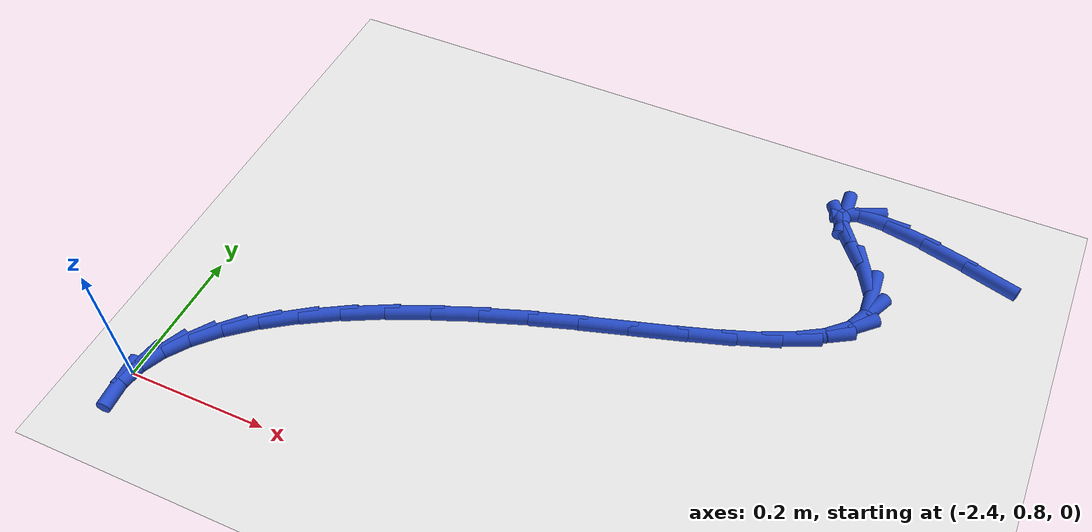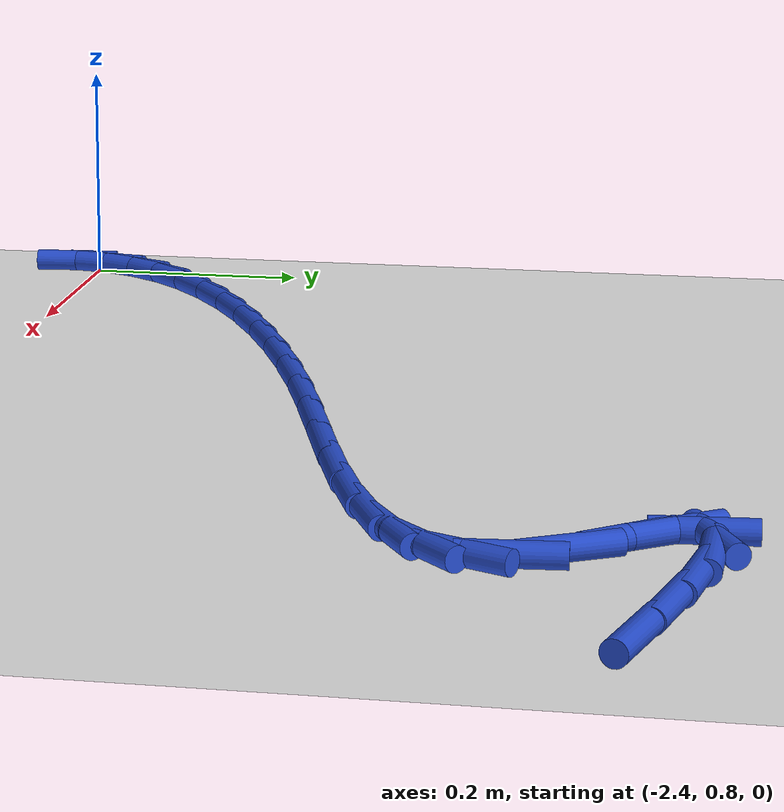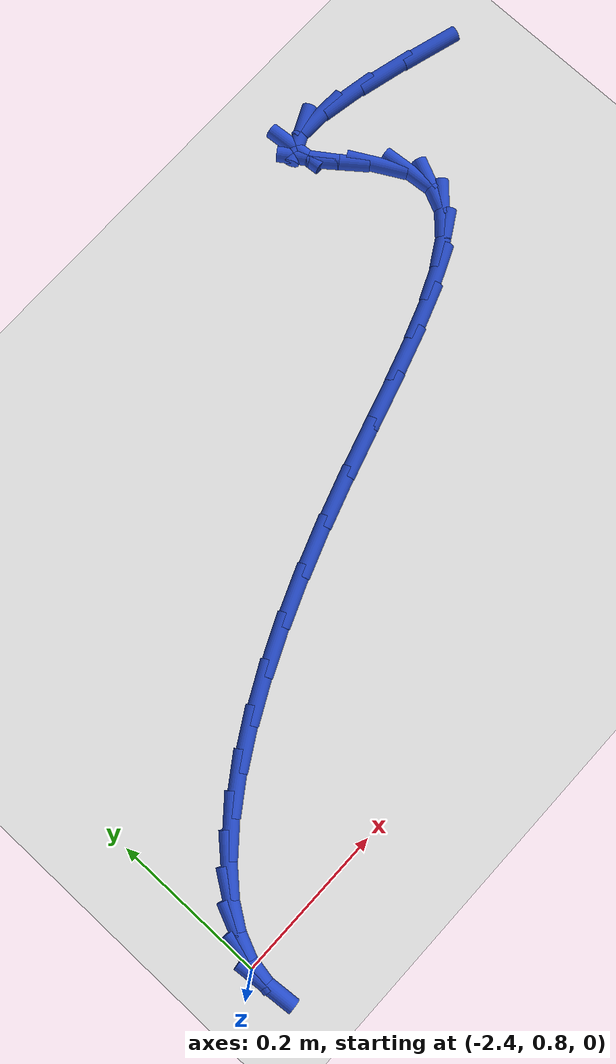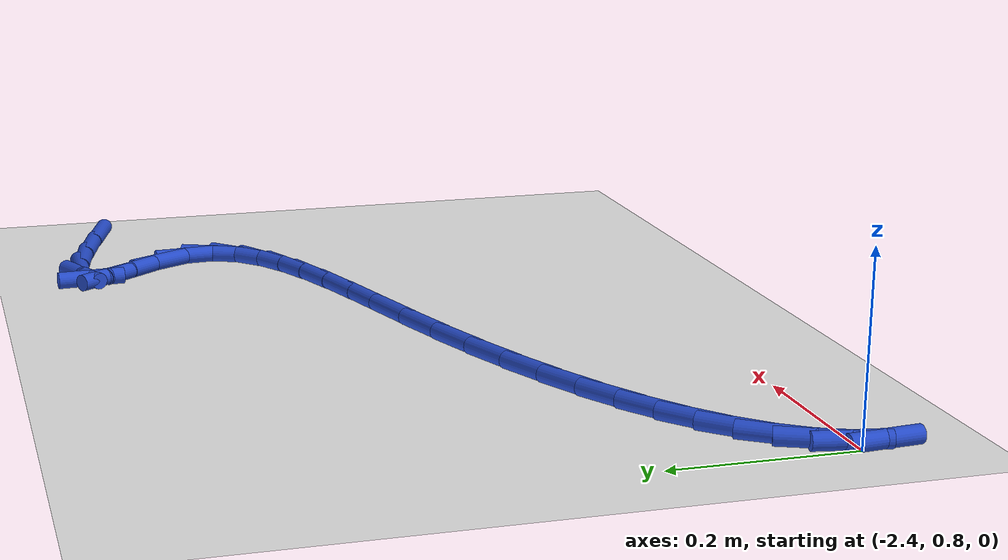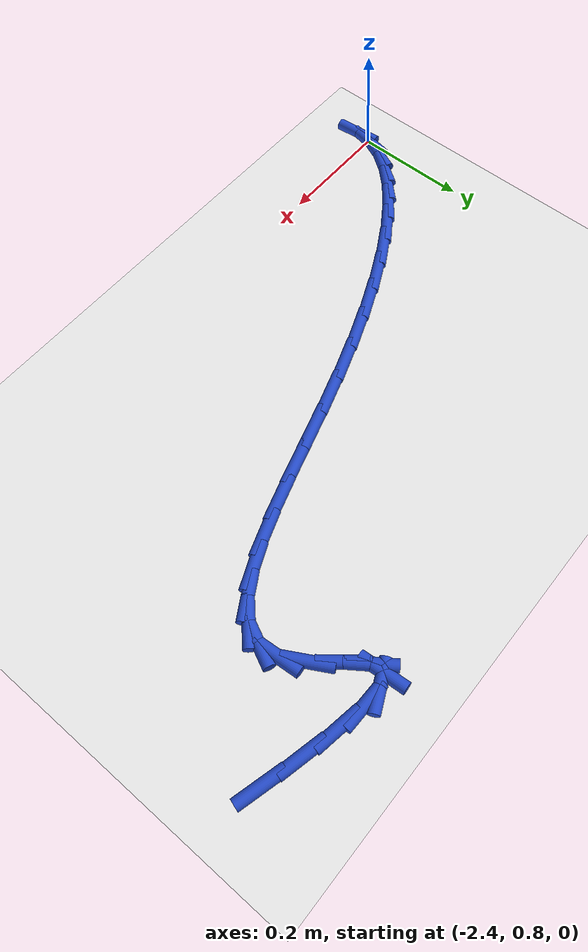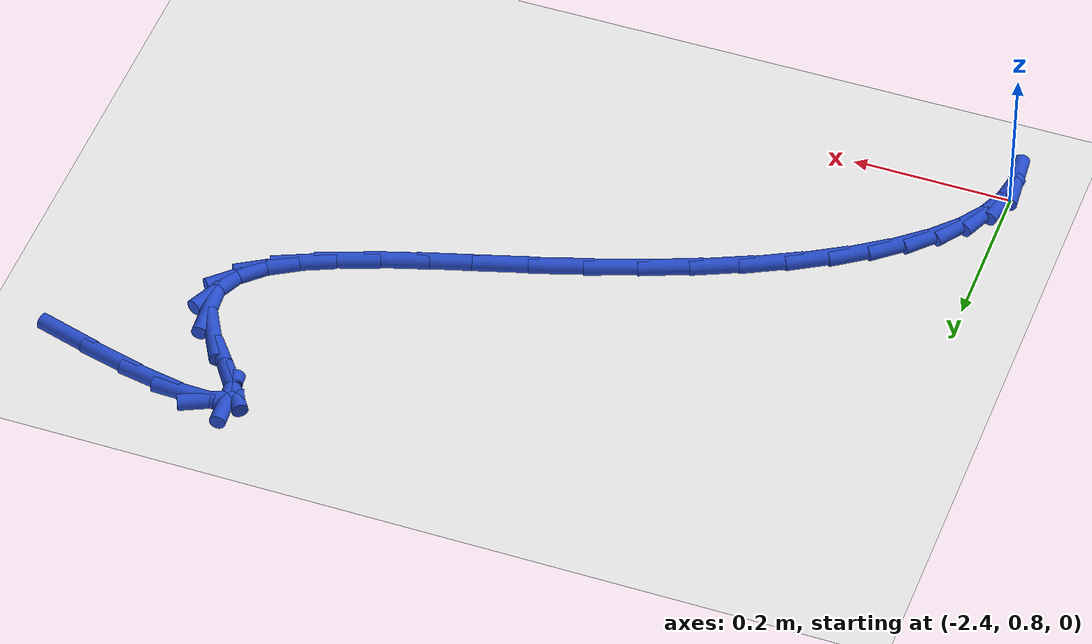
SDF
<sdf version="1.6">
 <world name="default">
  <model name="ground_plane">
   <static>1</static>
   <link name="link">
    <collision name="collision">
     <geometry><plane><normal>0 0 1</normal><size>100 100</size></plane></geometry>
     <surface><friction><ode><mu>100</mu><mu2>50</mu2></ode></friction></surface>
    </collision>
    <visual name="visual">
     <cast_shadows>0</cast_shadows>
     <geometry><plane><normal>0 0 1</normal><size>100 100</size></plane></geometry>
     <material>
      <script><uri>file://media/materials/scripts/gazebo.material</uri><name>Gazebo/WhiteGlow</name></script>
     </material>
    </visual>
   </link>
  </model>
  <model name="line">
   <link name="link_47">
    <pose>-1.4104933682964722 1.4083202542057947 0.01 0 1.57 -0.27989468889823294</pose>
    <collision name="collision">
     <geometry><cylinder><radius>0.01</radius><length>0.08</length></cylinder></geometry>
    </collision>
    <visual name="visual">
     <material>
      <script><name>Gazebo/Blue</name><uri>file://media/materials/scripts/gazebo.material</uri></script>
     </material>
     <geometry><cylinder><radius>0.01</radius><length>0.08</length></cylinder></geometry>
    </visual>
   </link>
   <link name="link_48">
    <pose>-1.473449529801171 1.4264163927965596 0.01 0 1.57 -0.24607528993753755</pose>
    <collision name="collision">
     <geometry><cylinder><radius>0.01</radius><length>0.08</length></cylinder></geometry>
    </collision>
    <visual name="visual">
     <material>
      <script><name>Gazebo/Blue</name><uri>file://media/materials/scripts/gazebo.material</uri></script>
     </material>
     <geometry><cylinder><radius>0.01</radius><length>0.08</length></cylinder></geometry>
    </visual>
   </link>
   <link name="link_49">
    <pose>-1.5298462601950193 1.440581304993576 0.01 0 1.57 -0.17865255584281298</pose>
    <collision name="collision">
     <geometry><cylinder><radius>0.01</radius><length>0.08</length></cylinder></geometry>
    </collision>
    <visual name="visual">
     <material>
      <script><name>Gazebo/Blue</name><uri>file://media/materials/scripts/gazebo.material</uri></script>
     </material>
     <geometry><cylinder><radius>0.01</radius><length>0.08</length></cylinder></geometry>
    </visual>
   </link>
   <link name="link_50">
    <pose>-1.576525541685138 1.449010547300073 0.01 0 1.57 -0.026296557602241002</pose>
    <collision name="collision">
     <geometry><cylinder><radius>0.01</radius><length>0.08</length></cylinder></geometry>
    </collision>
    <visual name="visual">
     <material>
      <script><name>Gazebo/Blue</name><uri>file://media/materials/scripts/gazebo.material</uri></script>
     </material>
     <geometry><cylinder><radius>0.01</radius><length>0.08</length></cylinder></geometry>
    </visual>
   </link>
   <link name="link_51">
    <pose>-1.6103293564786512 1.4498996762192808 0.01 0 1.57 0.4441148483691678</pose>
    <collision name="collision">
     <geometry><cylinder><radius>0.01</radius><length>0.08</length></cylinder></geometry>
    </collision>
    <visual name="visual">
     <material>
      <script><name>Gazebo/Blue</name><uri>file://media/materials/scripts/gazebo.material</uri></script>
     </material>
     <geometry><cylinder><radius>0.01</radius><length>0.08</length></cylinder></geometry>
    </visual>
   </link>
   <link name="link_52">
    <pose>-1.6280996867826814 1.4414442482544296 0.01 0 1.57 -1.4984305182070288</pose>
    <collision name="collision">
     <geometry><cylinder><radius>0.01</radius><length>0.08</length></cylinder></geometry>
    </collision>
    <visual name="visual">
     <material>
      <script><name>Gazebo/Blue</name><uri>file://media/materials/scripts/gazebo.material</uri></script>
     </material>
     <geometry><cylinder><radius>0.01</radius><length>0.08</length></cylinder></geometry>
    </visual>
   </link>
   <link name="link_53">
    <pose>-1.6266785148043492 1.421839819908748 0.01 0 1.57 -0.9635703298265265</pose>
    <collision name="collision">
     <geometry><cylinder><radius>0.01</radius><length>0.08</length></cylinder></geometry>
    </collision>
    <visual name="visual">
     <material>
      <script><name>Gazebo/Blue</name><uri>file://media/materials/scripts/gazebo.material</uri></script>
     </material>
     <geometry><cylinder><radius>0.01</radius><length>0.08</length></cylinder></geometry>
    </visual>
   </link>
   <link name="link_54">
    <pose>-1.604581130145524 1.3900357676664892 0.01 0 1.57 -0.9042869947587944</pose>
    <collision name="collision">
     <geometry><cylinder><radius>0.01</radius><length>0.08</length></cylinder></geometry>
    </collision>
    <visual name="visual">
     <material>
      <script><name>Gazebo/Blue</name><uri>file://media/materials/scripts/gazebo.material</uri></script>
     </material>
     <geometry><cylinder><radius>0.01</radius><length>0.08</length></cylinder></geometry>
    </visual>
   </link>
   <link name="link_55">
    <pose>-1.5739822433209991 1.3511349963150063 0.01 0 1.57 -1.072262286283603</pose>
    <collision name="collision">
     <geometry><cylinder><radius>0.01</radius><length>0.08</length></cylinder></geometry>
    </collision>
    <visual name="visual">
     <material>
      <script><name>Gazebo/Blue</name><uri>file://media/materials/scripts/gazebo.material</uri></script>
     </material>
     <geometry><cylinder><radius>0.01</radius><length>0.08</length></cylinder></geometry>
    </visual>
   </link>
   <link name="link_56">
    <pose>-1.5532462784882939 1.313045458852693 0.01 0 1.57 -1.48903114766833</pose>
    <collision name="collision">
     <geometry><cylinder><radius>0.01</radius><length>0.08</length></cylinder></geometry>
    </collision>
    <visual name="visual">
     <material>
      <script><name>Gazebo/Blue</name><uri>file://media/materials/scripts/gazebo.material</uri></script>
     </material>
     <geometry><cylinder><radius>0.01</radius><length>0.08</length></cylinder></geometry>
    </visual>
   </link>
   <link name="link_57">
    <pose>-1.5504904577430834 1.2794165149895513 0.01 0 1.57 1.145692306508358</pose>
    <collision name="collision">
     <geometry><cylinder><radius>0.01</radius><length>0.08</length></cylinder></geometry>
    </collision>
    <visual name="visual">
     <material>
      <script><name>Gazebo/Blue</name><uri>file://media/materials/scripts/gazebo.material</uri></script>
     </material>
     <geometry><cylinder><radius>0.01</radius><length>0.08</length></cylinder></geometry>
    </visual>
   </link>
   <link name="link_58">
    <pose>-1.563910443191096 1.2497727466809039 0.01 0 1.57 0.7651682351749294</pose>
    <collision name="collision">
     <geometry><cylinder><radius>0.01</radius><length>0.08</length></cylinder></geometry>
    </collision>
    <visual name="visual">
     <material>
      <script><name>Gazebo/Blue</name><uri>file://media/materials/scripts/gazebo.material</uri></script>
     </material>
     <geometry><cylinder><radius>0.01</radius><length>0.08</length></cylinder></geometry>
    </visual>
   </link>
   <link name="link_59">
    <pose>-1.5912984645674375 1.2234710133798115 0.01 0 1.57 0.5425554309416638</pose>
    <collision name="collision">
     <geometry><cylinder><radius>0.01</radius><length>0.08</length></cylinder></geometry>
    </collision>
    <visual name="visual">
     <material>
      <script><name>Gazebo/Blue</name><uri>file://media/materials/scripts/gazebo.material</uri></script>
     </material>
     <geometry><cylinder><radius>0.01</radius><length>0.08</length></cylinder></geometry>
    </visual>
   </link>
   <link name="link_60">
    <pose>-1.6304467516072156 1.199868174539333 0.01 0 1.57 0.41654773790873073</pose>
    <collision name="collision">
     <geometry><cylinder><radius>0.01</radius><length>0.08</length></cylinder></geometry>
    </collision>
    <visual name="visual">
     <material>
      <script><name>Gazebo/Blue</name><uri>file://media/materials/scripts/gazebo.material</uri></script>
     </material>
     <geometry><cylinder><radius>0.01</radius><length>0.08</length></cylinder></geometry>
    </visual>
   </link>
   <link name="link_61">
    <pose>-1.6791475340455353 1.1783210896125293 0.01 0 1.57 0.34489341332329615</pose>
    <collision name="collision">
     <geometry><cylinder><radius>0.01</radius><length>0.08</length></cylinder></geometry>
    </collision>
    <visual name="visual">
     <material>
      <script><name>Gazebo/Blue</name><uri>file://media/materials/scripts/gazebo.material</uri></script>
     </material>
     <geometry><cylinder><radius>0.01</radius><length>0.08</length></cylinder></geometry>
    </visual>
   </link>
   <link name="link_62">
    <pose>-1.7351930416175045 1.1581866180524611 0.01 0 1.57 0.30653596822226276</pose>
    <collision name="collision">
     <geometry><cylinder><radius>0.01</radius><length>0.08</length></cylinder></geometry>
    </collision>
    <visual name="visual">
     <material>
      <script><name>Gazebo/Blue</name><uri>file://media/materials/scripts/gazebo.material</uri></script>
     </material>
     <geometry><cylinder><radius>0.01</radius><length>0.08</length></cylinder></geometry>
    </visual>
   </link>
   <link name="link_63">
    <pose>-1.7963755040582297 1.1388216193121876 0.01 0 1.57 0.2915308086980983</pose>
    <collision name="collision">
     <geometry><cylinder><radius>0.01</radius><length>0.08</length></cylinder></geometry>
    </collision>
    <visual name="visual">
     <material>
      <script><name>Gazebo/Blue</name><uri>file://media/materials/scripts/gazebo.material</uri></script>
     </material>
     <geometry><cylinder><radius>0.01</radius><length>0.08</length></cylinder></geometry>
    </visual>
   </link>
   <link name="link_64">
    <pose>-1.8604871511028163 1.1195829528447694 0.01 0 1.57 0.2957749927005786</pose>
    <collision name="collision">
     <geometry><cylinder><radius>0.01</radius><length>0.08</length></cylinder></geometry>
    </collision>
    <visual name="visual">
     <material>
      <script><name>Gazebo/Blue</name><uri>file://media/materials/scripts/gazebo.material</uri></script>
     </material>
     <geometry><cylinder><radius>0.01</radius><length>0.08</length></cylinder></geometry>
    </visual>
   </link>
   <link name="link_65">
    <pose>-1.9253202124863715 1.0998274781032662 0.01 0 1.57 0.31795910009557055</pose>
    <collision name="collision">
     <geometry><cylinder><radius>0.01</radius><length>0.08</length></cylinder></geometry>
    </collision>
    <visual name="visual">
     <material>
      <script><name>Gazebo/Blue</name><uri>file://media/materials/scripts/gazebo.material</uri></script>
     </material>
     <geometry><cylinder><radius>0.01</radius><length>0.08</length></cylinder></geometry>
    </visual>
   </link>
   <link name="link_66">
    <pose>-1.9887548408993452 1.0789494987074935 0.01 0 1.57 0.34953979547859126</pose>
    <collision name="collision">
     <geometry><cylinder><radius>0.01</radius><length>0.08</length></cylinder></geometry>
    </collision>
    <visual name="visual">
     <material>
      <script><name>Gazebo/Blue</name><uri>file://media/materials/scripts/gazebo.material</uri></script>
     </material>
     <geometry><cylinder><radius>0.01</radius><length>0.08</length></cylinder></geometry>
    </visual>
   </link>
   <link name="link_67">
    <pose>-2.0496406555161633 1.0567561895751814 0.01 0 1.57 0.3854222471180839</pose>
    <collision name="collision">
     <geometry><cylinder><radius>0.01</radius><length>0.08</length></cylinder></geometry>
    </collision>
    <visual name="visual">
     <material>
      <script><name>Gazebo/Blue</name><uri>file://media/materials/scripts/gazebo.material</uri></script>
     </material>
     <geometry><cylinder><radius>0.01</radius><length>0.08</length></cylinder></geometry>
    </visual>
   </link>
   <link name="link_68">
    <pose>-2.107428617821896 1.0333108221311513 0.01 0 1.57 0.4268824343481213</pose>
    <collision name="collision">
     <geometry><cylinder><radius>0.01</radius><length>0.08</length></cylinder></geometry>
    </collision>
    <visual name="visual">
     <material>
      <script><name>Gazebo/Blue</name><uri>file://media/materials/scripts/gazebo.material</uri></script>
     </material>
     <geometry><cylinder><radius>0.01</radius><length>0.08</length></cylinder></geometry>
    </visual>
   </link>
   <link name="link_69">
    <pose>-2.1615786816910343 1.008680497431833 0.01 0 1.57 0.4757737800479558</pose>
    <collision name="collision">
     <geometry><cylinder><radius>0.01</radius><length>0.08</length></cylinder></geometry>
    </collision>
    <visual name="visual">
     <material>
      <script><name>Gazebo/Blue</name><uri>file://media/materials/scripts/gazebo.material</uri></script>
     </material>
     <geometry><cylinder><radius>0.01</radius><length>0.08</length></cylinder></geometry>
    </visual>
   </link>
   <link name="link_70">
    <pose>-2.2115508009980682 0.9829323165336572 0.01 0 1.57 0.5346553212865571</pose>
    <collision name="collision">
     <geometry><cylinder><radius>0.01</radius><length>0.08</length></cylinder></geometry>
    </collision>
    <visual name="visual">
     <material>
      <script><name>Gazebo/Blue</name><uri>file://media/materials/scripts/gazebo.material</uri></script>
     </material>
     <geometry><cylinder><radius>0.01</radius><length>0.08</length></cylinder></geometry>
    </visual>
   </link>
   <link name="link_71">
    <pose>-2.2568049296174864 0.9561333804930527 0.01 0 1.57 0.6071146066742659</pose>
    <collision name="collision">
     <geometry><cylinder><radius>0.01</radius><length>0.08</length></cylinder></geometry>
    </collision>
    <visual name="visual">
     <material>
      <script><name>Gazebo/Blue</name><uri>file://media/materials/scripts/gazebo.material</uri></script>
     </material>
     <geometry><cylinder><radius>0.01</radius><length>0.08</length></cylinder></geometry>
    </visual>
   </link>
   <link name="link_72">
    <pose>-2.2968010214237786 0.9283507903664507 0.01 0 1.57 0.6981935841607546</pose>
    <collision name="collision">
     <geometry><cylinder><radius>0.01</radius><length>0.08</length></cylinder></geometry>
    </collision>
    <visual name="visual">
     <material>
      <script><name>Gazebo/Blue</name><uri>file://media/materials/scripts/gazebo.material</uri></script>
     </material>
     <geometry><cylinder><radius>0.01</radius><length>0.08</length></cylinder></geometry>
    </visual>
   </link>
   <link name="link_73">
    <pose>-2.330999030291435 0.8996516472102802 0.01 0 1.57 0.8148054678981683</pose>
    <collision name="collision">
     <geometry><cylinder><radius>0.01</radius><length>0.08</length></cylinder></geometry>
    </collision>
    <visual name="visual">
     <material>
      <script><name>Gazebo/Blue</name><uri>file://media/materials/scripts/gazebo.material</uri></script>
     </material>
     <geometry><cylinder><radius>0.01</radius><length>0.08</length></cylinder></geometry>
    </visual>
   </link>
   <link name="link_74">
    <pose>-2.3588589100949453 0.8701030520809712 0.01 0 1.57 0.9656226809552602</pose>
    <collision name="collision">
     <geometry><cylinder><radius>0.01</radius><length>0.08</length></cylinder></geometry>
    </collision>
    <visual name="visual">
     <material>
      <script><name>Gazebo/Blue</name><uri>file://media/materials/scripts/gazebo.material</uri></script>
     </material>
     <geometry><cylinder><radius>0.01</radius><length>0.08</length></cylinder></geometry>
    </visual>
   </link>
   <link name="link_75">
    <pose>-2.3798406147087996 0.8397721060349541 0.01 0 1.57 1.1589058228469624</pose>
    <collision name="collision">
     <geometry><cylinder><radius>0.01</radius><length>0.08</length></cylinder></geometry>
    </collision>
    <visual name="visual">
     <material>
      <script><name>Gazebo/Blue</name><uri>file://media/materials/scripts/gazebo.material</uri></script>
     </material>
     <geometry><cylinder><radius>0.01</radius><length>0.08</length></cylinder></geometry>
    </visual>
   </link>
   <link name="link_76">
    <pose>-2.3934040980074864 0.8087259101286587 0.01 0 1.57 1.3957540265869801</pose>
    <collision name="collision">
     <geometry><cylinder><radius>0.01</radius><length>0.08</length></cylinder></geometry>
    </collision>
    <visual name="visual">
     <material>
      <script><name>Gazebo/Blue</name><uri>file://media/materials/scripts/gazebo.material</uri></script>
     </material>
     <geometry><cylinder><radius>0.01</radius><length>0.08</length></cylinder></geometry>
    </visual>
   </link>
   <link name="link_77">
    <pose>-2.399009313865496 0.7770315654185143 0.01 0 1.57 -1.482196314395727</pose>
    <collision name="collision">
     <geometry><cylinder><radius>0.01</radius><length>0.08</length></cylinder></geometry>
    </collision>
    <visual name="visual">
     <material>
      <script><name>Gazebo/Blue</name><uri>file://media/materials/scripts/gazebo.material</uri></script>
     </material>
     <geometry><cylinder><radius>0.01</radius><length>0.08</length></cylinder></geometry>
    </visual>
   </link>
  </model>
 </world>
</sdf>
